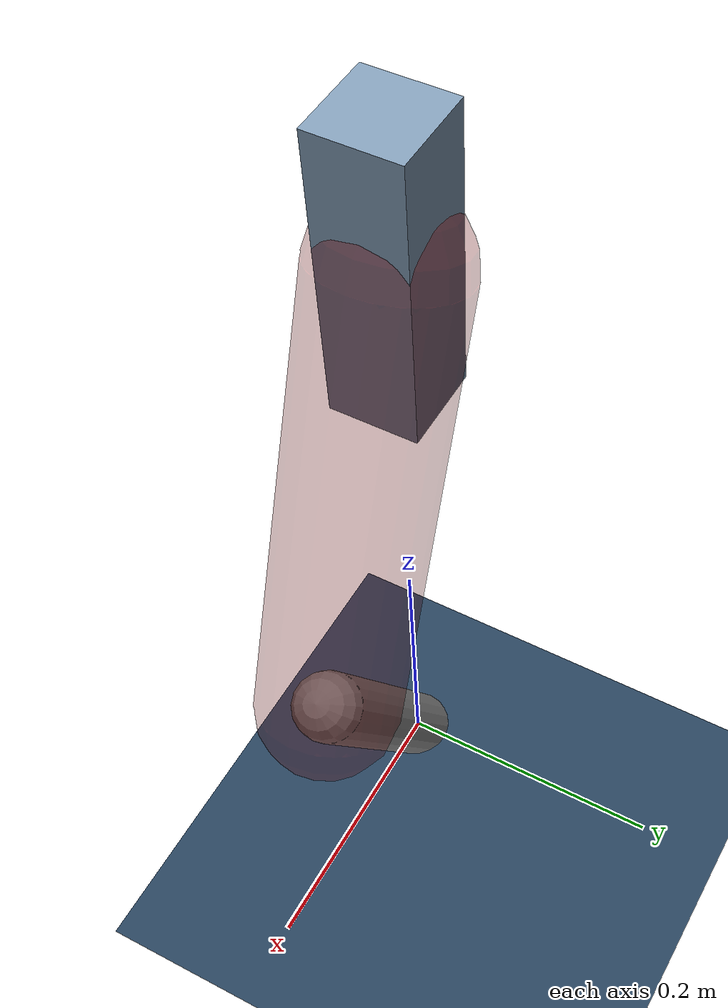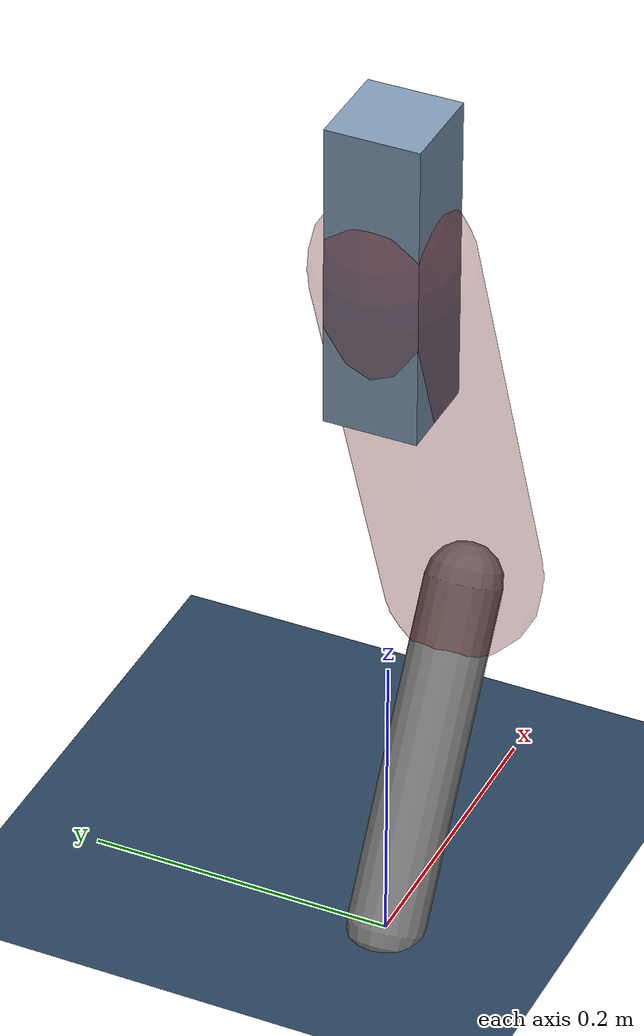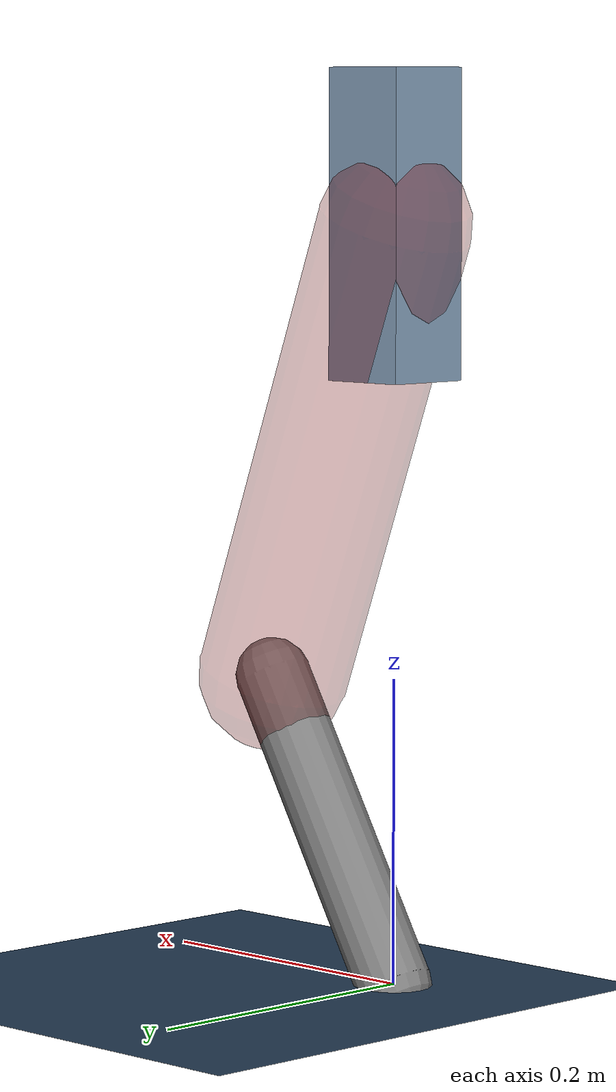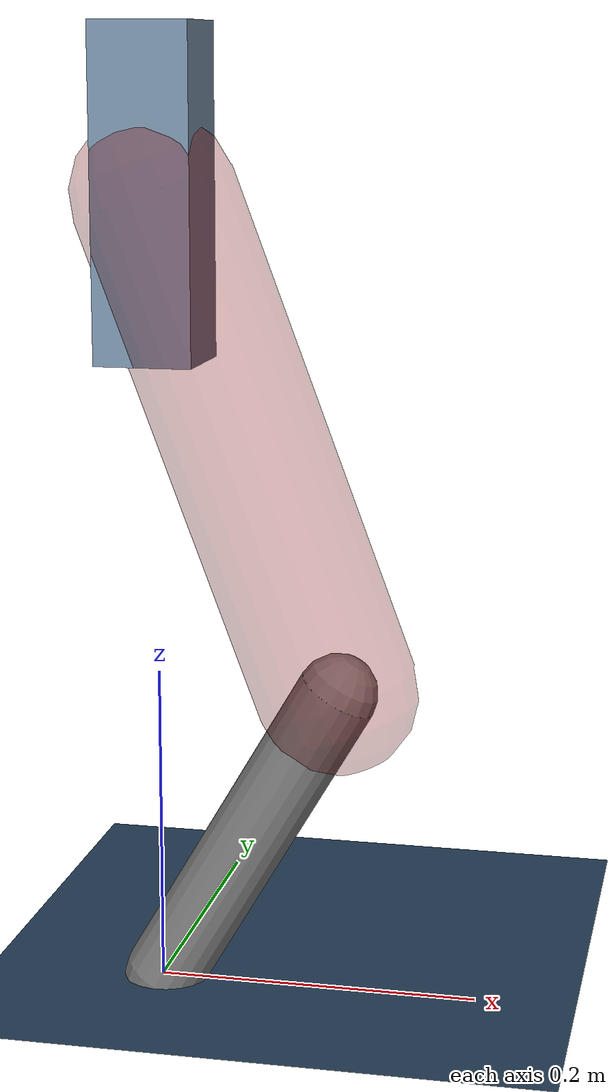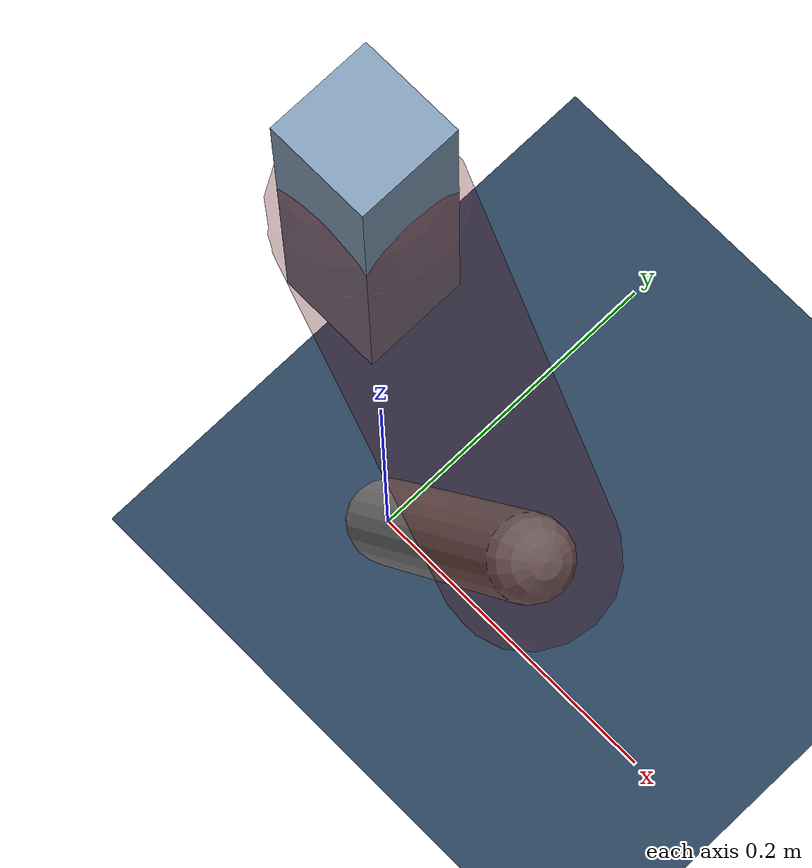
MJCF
<mujoco model="Hopper2D">
	<compiler inertiafromgeom="true" angle="radian" />
	<option timestep="0.001" integrator="implicit" cone="elliptic" solver="Newton" tolerance="1e-10" />

	<default>
		<geom contype="1" conaffinity="1" condim="3" friction="2 0.005 0.0001" solref="0.005 1" />
		<joint limited="true" damping="0.1" />
	</default>

	<asset>
		<texture name="skybox" type="skybox" builtin="gradient" rgb1=".4 .6 .8" rgb2="0 0 0" width="800" height="800" />
		<texture name="grid" type="2d" builtin="checker" rgb1=".1 .2 .3" rgb2=".2 .3 .4" width="300" height="300" mark="edge" markrgb=".2 .3 .4" />
		<material name="ground" texture="grid" texrepeat="1 1" texuniform="true" reflectance="0.1" />
		<material name="leg" rgba="0.5 0.6 0.7 1" />
	</asset>

	<worldbody>

		<geom name="floor" type="plane" size="5 5 0.25" material="ground" />

		<light directional="false" diffuse="0.8 0.8 0.8" specular="0.3 0.3 0.3" pos="0 0 2" dir="0 0 -1" />
		<light mode="targetbodycom" target="base" directional="false" diffuse="0.8 0.8 0.8" specular="0.3 0.3 0.3" pos="0 0 2" dir="0 0 -1" />

		<camera name="fixed" pos="0 -2 1" xyaxes="1 0 0 0 0 1" />
		<camera name="tracking" mode="trackcom" pos="0 -3 1" />

		<body name="root" pos="0 0 0.49343662346504413">
			<joint name="slide_x" type="slide" axis="1 0 0" range="-100 100" />
			<joint name="slide_z" type="slide" axis="0 0 1" range="0 10" />

			<body name="base" pos="0 0 0">
				<geom name="torso" type="box" size="0.03 0.03 0.1" mass="2.858" material="leg" />

				<body name="link1" pos="0 0 0" euler="0 1.2125744147685733 0">
					<joint type="hinge" axis="0 -1 0" pos="0 0 0" name="hinge1" limited="true" range="-3.14 3.14" stiffness="0" damping="0.1" />
					<geom name="thigh" type="capsule" fromto="0 0 0 0.3212427572959927 0 0" size="0.05" rgba="0.5 0 0 0.3" mass="1.0466554446991803" />

					<body name="link2" pos="0.3212427572959927 0 0" euler="0 0.8874155251400335 0">
						<joint type="hinge" axis="0 -1 0" pos="0 0 0" name="hinge2" limited="true" range="-3.14 3.14" stiffness="0" damping="0.1" />
						<geom name="shank" type="capsule" fromto="0 0 0 0.22310308334668028 0 0" size="0.025" mass="0.42028246667734426" />

					</body>
				</body>
			</body>
		</body>
	</worldbody>

	<actuator>
		<motor name="torque1" joint="hinge1" ctrlrange="-31.108666482295014 31.108666482295014" ctrllimited="true" gear="1" />
		<motor name="torque2" joint="hinge2" ctrlrange="-189.91696891709302 189.91696891709302" ctrllimited="true" gear="1" />
	</actuator>
</mujoco>
